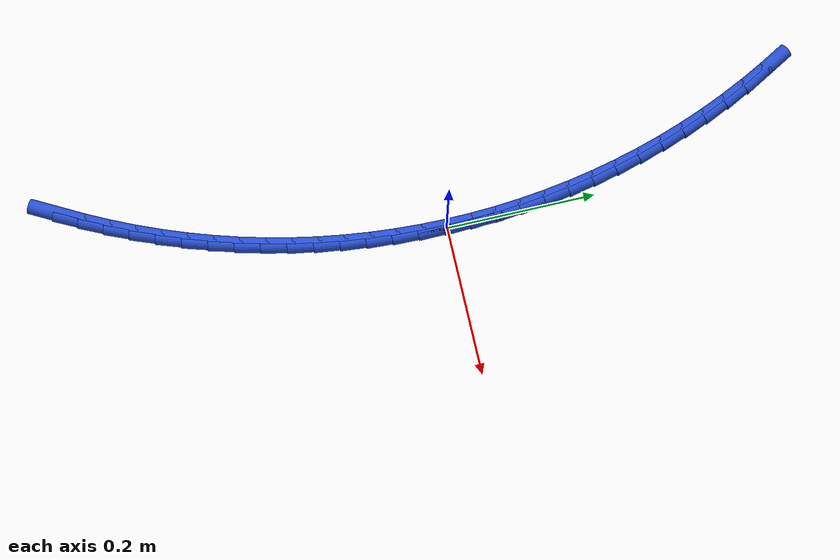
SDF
<sdf version="1.6">
 <world name="default">
  <model name="ground_plane">
   <static>1</static>
   <link name="link">
    <collision name="collision">
     <geometry><plane><normal>0 0 1</normal><size>100 100</size></plane></geometry>
     <surface><friction><ode><mu>100</mu><mu2>50</mu2></ode></friction></surface>
    </collision>
    <visual name="visual">
     <cast_shadows>0</cast_shadows>
     <geometry><plane><normal>0 0 1</normal><size>100 100</size></plane></geometry>
     <material>
      <script><uri>file://media/materials/scripts/gazebo.material</uri><name>Gazebo/WhiteGlow</name></script>
     </material>
    </visual>
   </link>
  </model>
  <model name="line">
   <link name="link_0">
    <pose>1.734723475976807e-18 9.71445146547012e-17 0.01 0 1.57 -1.5542168274850594</pose>
    <collision name="collision">
     <geometry><cylinder><radius>0.01</radius><length>0.08</length></cylinder></geometry>
    </collision>
    <visual name="visual">
     <material>
      <script><name>Gazebo/Blue</name><uri>file://media/materials/scripts/gazebo.material</uri></script>
     </material>
     <geometry><cylinder><radius>0.01</radius><length>0.08</length></cylinder></geometry>
    </visual>
   </link>
   <link name="link_1">
    <pose>-0.0005699413144302086 0.03437311833359964 0.01 0 1.57 -1.5199864834201993</pose>
    <collision name="collision">
     <geometry><cylinder><radius>0.01</radius><length>0.08</length></cylinder></geometry>
    </collision>
    <visual name="visual">
     <material>
      <script><name>Gazebo/Blue</name><uri>file://media/materials/scripts/gazebo.material</uri></script>
     </material>
     <geometry><cylinder><radius>0.01</radius><length>0.08</length></cylinder></geometry>
    </visual>
   </link>
   <link name="link_2">
    <pose>-0.0023165897945779503 0.0687197140490652 0.01 0 1.57 -1.485694874704262</pose>
    <collision name="collision">
     <geometry><cylinder><radius>0.01</radius><length>0.08</length></cylinder></geometry>
    </collision>
    <visual name="visual">
     <material>
      <script><name>Gazebo/Blue</name><uri>file://media/materials/scripts/gazebo.material</uri></script>
     </material>
     <geometry><cylinder><radius>0.01</radius><length>0.08</length></cylinder></geometry>
    </visual>
   </link>
   <link name="link_3">
    <pose>-0.005240828427916939 0.10299851644580163 0.01 0 1.57 -1.4512998003957758</pose>
    <collision name="collision">
     <geometry><cylinder><radius>0.01</radius><length>0.08</length></cylinder></geometry>
    </collision>
    <visual name="visual">
     <material>
      <script><name>Gazebo/Blue</name><uri>file://media/materials/scripts/gazebo.material</uri></script>
     </material>
     <geometry><cylinder><radius>0.01</radius><length>0.08</length></cylinder></geometry>
    </visual>
   </link>
   <link name="link_4">
    <pose>-0.009343540201920894 0.13716825482321376 0.01 0 1.57 -1.4167599571326206</pose>
    <collision name="collision">
     <geometry><cylinder><radius>0.01</radius><length>0.08</length></cylinder></geometry>
    </collision>
    <visual name="visual">
     <material>
      <script><name>Gazebo/Blue</name><uri>file://media/materials/scripts/gazebo.material</uri></script>
     </material>
     <geometry><cylinder><radius>0.01</radius><length>0.08</length></cylinder></geometry>
    </visual>
   </link>
   <link name="link_5">
    <pose>-0.01462560810406353 0.17118765848070652 0.01 0 1.57 -1.3820352444931414</pose>
    <collision name="collision">
     <geometry><cylinder><radius>0.01</radius><length>0.08</length></cylinder></geometry>
    </collision>
    <visual name="visual">
     <material>
      <script><name>Gazebo/Blue</name><uri>file://media/materials/scripts/gazebo.material</uri></script>
     </material>
     <geometry><cylinder><radius>0.01</radius><length>0.08</length></cylinder></geometry>
    </visual>
   </link>
   <link name="link_6">
    <pose>-0.021087915121818568 0.20501545671768473 0.01 0 1.57 -1.3470870885615318</pose>
    <collision name="collision">
     <geometry><cylinder><radius>0.01</radius><length>0.08</length></cylinder></geometry>
    </collision>
    <visual name="visual">
     <material>
      <script><name>Gazebo/Blue</name><uri>file://media/materials/scripts/gazebo.material</uri></script>
     </material>
     <geometry><cylinder><radius>0.01</radius><length>0.08</length></cylinder></geometry>
    </visual>
   </link>
   <link name="link_7">
    <pose>-0.028731344242659704 0.23861037883355316 0.01 0 1.57 -1.3118787876589248</pose>
    <collision name="collision">
     <geometry><cylinder><radius>0.01</radius><length>0.08</length></cylinder></geometry>
    </collision>
    <visual name="visual">
     <material>
      <script><name>Gazebo/Blue</name><uri>file://media/materials/scripts/gazebo.material</uri></script>
     </material>
     <geometry><cylinder><radius>0.01</radius><length>0.08</length></cylinder></geometry>
    </visual>
   </link>
   <link name="link_8">
    <pose>-0.03755677845406068 0.27193115412771673 0.01 0 1.57 -1.2763758832175205</pose>
    <collision name="collision">
     <geometry><cylinder><radius>0.01</radius><length>0.08</length></cylinder></geometry>
    </collision>
    <visual name="visual">
     <material>
      <script><name>Gazebo/Blue</name><uri>file://media/materials/scripts/gazebo.material</uri></script>
     </material>
     <geometry><cylinder><radius>0.01</radius><length>0.08</length></cylinder></geometry>
    </visual>
   </link>
   <link name="link_9">
    <pose>-0.0475651007434952 0.3049365118995803 0.01 0 1.57 -1.240554124326306</pose>
    <collision name="collision">
     <geometry><cylinder><radius>0.01</radius><length>0.08</length></cylinder></geometry>
    </collision>
    <visual name="visual">
     <material>
      <script><name>Gazebo/Blue</name><uri>file://media/materials/scripts/gazebo.material</uri></script>
     </material>
     <geometry><cylinder><radius>0.01</radius><length>0.08</length></cylinder></geometry>
    </visual>
   </link>
   <link name="link_10">
    <pose>-0.058756923608543905 0.3375851977467124 0.01 0 1.57 -1.2046821692691358</pose>
    <collision name="collision">
     <geometry><cylinder><radius>0.01</radius><length>0.08</length></cylinder></geometry>
    </collision>
    <visual name="visual">
     <material>
      <script><name>Gazebo/Blue</name><uri>file://media/materials/scripts/gazebo.material</uri></script>
     </material>
     <geometry><cylinder><radius>0.01</radius><length>0.08</length></cylinder></geometry>
    </visual>
   </link>
   <link name="link_11">
    <pose>-0.07112209562300975 0.36983660583876315 0.01 0 1.57 -1.169108550293276</pose>
    <collision name="collision">
     <geometry><cylinder><radius>0.01</radius><length>0.08</length></cylinder></geometry>
    </collision>
    <visual name="visual">
     <material>
      <script><name>Gazebo/Blue</name><uri>file://media/materials/scripts/gazebo.material</uri></script>
     </material>
     <geometry><cylinder><radius>0.01</radius><length>0.08</length></cylinder></geometry>
    </visual>
   </link>
   <link name="link_12">
    <pose>-0.08463633708232285 0.40165098163410373 0.01 0 1.57 -1.1338066439252668</pose>
    <collision name="collision">
     <geometry><cylinder><radius>0.01</radius><length>0.08</length></cylinder></geometry>
    </collision>
    <visual name="visual">
     <material>
      <script><name>Gazebo/Blue</name><uri>file://media/materials/scripts/gazebo.material</uri></script>
     </material>
     <geometry><cylinder><radius>0.01</radius><length>0.08</length></cylinder></geometry>
    </visual>
   </link>
   <link name="link_13">
    <pose>-0.09927440927955722 0.43298862837506635 0.01 0 1.57 -1.098721480478272</pose>
    <collision name="collision">
     <geometry><cylinder><radius>0.01</radius><length>0.08</length></cylinder></geometry>
    </collision>
    <visual name="visual">
     <material>
      <script><name>Gazebo/Blue</name><uri>file://media/materials/scripts/gazebo.material</uri></script>
     </material>
     <geometry><cylinder><radius>0.01</radius><length>0.08</length></cylinder></geometry>
    </visual>
   </link>
   <link name="link_14">
    <pose>-0.1150110735077868 0.46380984930398367 0.01 0 1.57 -1.0637969533205747</pose>
    <collision name="collision">
     <geometry><cylinder><radius>0.01</radius><length>0.08</length></cylinder></geometry>
    </collision>
    <visual name="visual">
     <material>
      <script><name>Gazebo/Blue</name><uri>file://media/materials/scripts/gazebo.material</uri></script>
     </material>
     <geometry><cylinder><radius>0.01</radius><length>0.08</length></cylinder></geometry>
    </visual>
   </link>
   <link name="link_175">
    <pose>-0.1308974570580643 -0.4949351887020647 0.01 0 1.57 1.0719178830069171</pose>
    <collision name="collision">
     <geometry><cylinder><radius>0.01</radius><length>0.08</length></cylinder></geometry>
    </collision>
    <visual name="visual">
     <material>
      <script><name>Gazebo/Blue</name><uri>file://media/materials/scripts/gazebo.material</uri></script>
     </material>
     <geometry><cylinder><radius>0.01</radius><length>0.08</length></cylinder></geometry>
    </visual>
   </link>
   <link name="link_176">
    <pose>-0.11436398050485405 -0.46459002114347314 0.01 0 1.57 1.1063314329329645</pose>
    <collision name="collision">
     <geometry><cylinder><radius>0.01</radius><length>0.08</length></cylinder></geometry>
    </collision>
    <visual name="visual">
     <material>
      <script><name>Gazebo/Blue</name><uri>file://media/materials/scripts/gazebo.material</uri></script>
     </material>
     <geometry><cylinder><radius>0.01</radius><length>0.08</length></cylinder></geometry>
    </visual>
   </link>
   <link name="link_177">
    <pose>-0.09884714264692106 -0.4336196503487639 0.01 0 1.57 1.1405766983844552</pose>
    <collision name="collision">
     <geometry><cylinder><radius>0.01</radius><length>0.08</length></cylinder></geometry>
    </collision>
    <visual name="visual">
     <material>
      <script><name>Gazebo/Blue</name><uri>file://media/materials/scripts/gazebo.material</uri></script>
     </material>
     <geometry><cylinder><radius>0.01</radius><length>0.08</length></cylinder></geometry>
    </visual>
   </link>
   <link name="link_178">
    <pose>-0.0843799337779443 -0.40209290662629493 0.01 0 1.57 1.1748000423163563</pose>
    <collision name="collision">
     <geometry><cylinder><radius>0.01</radius><length>0.08</length></cylinder></geometry>
    </collision>
    <visual name="visual">
     <material>
      <script><name>Gazebo/Blue</name><uri>file://media/materials/scripts/gazebo.material</uri></script>
     </material>
     <geometry><cylinder><radius>0.01</radius><length>0.08</length></cylinder></geometry>
    </visual>
   </link>
   <link name="link_179">
    <pose>-0.07099534419160292 -0.3700786202844242 0.01 0 1.57 1.209147069117894</pose>
    <collision name="collision">
     <geometry><cylinder><radius>0.01</radius><length>0.08</length></cylinder></geometry>
    </collision>
    <visual name="visual">
     <material>
      <script><name>Gazebo/Blue</name><uri>file://media/materials/scripts/gazebo.material</uri></script>
     </material>
     <geometry><cylinder><radius>0.01</radius><length>0.08</length></cylinder></geometry>
    </visual>
   </link>
   <link name="link_180">
    <pose>-0.05872636418157529 -0.337645621631508 0.01 0 1.57 1.2437442926390148</pose>
    <collision name="collision">
     <geometry><cylinder><radius>0.01</radius><length>0.08</length></cylinder></geometry>
    </collision>
    <visual name="visual">
     <material>
      <script><name>Gazebo/Blue</name><uri>file://media/materials/scripts/gazebo.material</uri></script>
     </material>
     <geometry><cylinder><radius>0.01</radius><length>0.08</length></cylinder></geometry>
    </visual>
   </link>
   <link name="link_181">
    <pose>-0.0476048269948178 -0.3048613909194932 0.01 0 1.57 1.2784263001976446</pose>
    <collision name="collision">
     <geometry><cylinder><radius>0.01</radius><length>0.08</length></cylinder></geometry>
    </collision>
    <visual name="visual">
     <material>
      <script><name>Gazebo/Blue</name><uri>file://media/materials/scripts/gazebo.material</uri></script>
     </material>
     <geometry><cylinder><radius>0.01</radius><length>0.08</length></cylinder></geometry>
    </visual>
   </link>
   <link name="link_182">
    <pose>-0.03764551995750612 -0.2717735190093582 0.01 0 1.57 1.313008058495408</pose>
    <collision name="collision">
     <geometry><cylinder><radius>0.01</radius><length>0.08</length></cylinder></geometry>
    </collision>
    <visual name="visual">
     <material>
      <script><name>Gazebo/Blue</name><uri>file://media/materials/scripts/gazebo.material</uri></script>
     </material>
     <geometry><cylinder><radius>0.01</radius><length>0.08</length></cylinder></geometry>
    </visual>
   </link>
   <link name="link_183">
    <pose>-0.028850243605270012 -0.23841444361442166 0.01 0 1.57 1.3474948645885132</pose>
    <collision name="collision">
     <geometry><cylinder><radius>0.01</radius><length>0.08</length></cylinder></geometry>
    </collision>
    <visual name="visual">
     <material>
      <script><name>Gazebo/Blue</name><uri>file://media/materials/scripts/gazebo.material</uri></script>
     </material>
     <geometry><cylinder><radius>0.01</radius><length>0.08</length></cylinder></geometry>
    </visual>
   </link>
   <link name="link_184">
    <pose>-0.021220472124755512 -0.20481622165997634 0.01 0 1.57 1.3818987958831694</pose>
    <collision name="collision">
     <geometry><cylinder><radius>0.01</radius><length>0.08</length></cylinder></geometry>
    </collision>
    <visual name="visual">
     <material>
      <script><name>Gazebo/Blue</name><uri>file://media/materials/scripts/gazebo.material</uri></script>
     </material>
     <geometry><cylinder><radius>0.01</radius><length>0.08</length></cylinder></geometry>
    </visual>
   </link>
   <link name="link_185">
    <pose>-0.014757679702608648 -0.17101091007131464 0.01 0 1.57 1.416233100109331</pose>
    <collision name="collision">
     <geometry><cylinder><radius>0.01</radius><length>0.08</length></cylinder></geometry>
    </collision>
    <visual name="visual">
     <material>
      <script><name>Gazebo/Blue</name><uri>file://media/materials/scripts/gazebo.material</uri></script>
     </material>
     <geometry><cylinder><radius>0.01</radius><length>0.08</length></cylinder></geometry>
    </visual>
   </link>
   <link name="link_186">
    <pose>-0.009463340525475553 -0.1370305657737298 0.01 0 1.57 1.4505119754173914</pose>
    <collision name="collision">
     <geometry><cylinder><radius>0.01</radius><length>0.08</length></cylinder></geometry>
    </collision>
    <visual name="visual">
     <material>
      <script><name>Gazebo/Blue</name><uri>file://media/materials/scripts/gazebo.material</uri></script>
     </material>
     <geometry><cylinder><radius>0.01</radius><length>0.08</length></cylinder></geometry>
    </visual>
   </link>
   <link name="link_187">
    <pose>-0.0053389287800020375 -0.10290724569251299 0.01 0 1.57 1.4847503483304927</pose>
    <collision name="collision">
     <geometry><cylinder><radius>0.01</radius><length>0.08</length></cylinder></geometry>
    </collision>
    <visual name="visual">
     <material>
      <script><name>Gazebo/Blue</name><uri>file://media/materials/scripts/gazebo.material</uri></script>
     </material>
     <geometry><cylinder><radius>0.01</radius><length>0.08</length></cylinder></geometry>
    </visual>
   </link>
   <link name="link_188">
    <pose>-0.002385918652834252 -0.06867300675295739 0.01 0 1.57 1.51896365046628</pose>
    <collision name="collision">
     <geometry><cylinder><radius>0.01</radius><length>0.08</length></cylinder></geometry>
    </collision>
    <visual name="visual">
     <material>
      <script><name>Gazebo/Blue</name><uri>file://media/materials/scripts/gazebo.material</uri></script>
     </material>
     <geometry><cylinder><radius>0.01</radius><length>0.08</length></cylinder></geometry>
    </visual>
   </link>
   <link name="link_189">
    <pose>-0.0006057843306182262 -0.034359905880355535 0.01 0 1.57 1.5531675946969359</pose>
    <collision name="collision">
     <geometry><cylinder><radius>0.01</radius><length>0.08</length></cylinder></geometry>
    </collision>
    <visual name="visual">
     <material>
      <script><name>Gazebo/Blue</name><uri>file://media/materials/scripts/gazebo.material</uri></script>
     </material>
     <geometry><cylinder><radius>0.01</radius><length>0.08</length></cylinder></geometry>
    </visual>
   </link>
   <link name="link_190">
    <pose>1.734723475976807e-18 -6.938893903907228e-18 0.01 0 1.57 -1.5542147023491264</pose>
    <collision name="collision">
     <geometry><cylinder><radius>0.01</radius><length>0.08</length></cylinder></geometry>
    </collision>
    <visual name="visual">
     <material>
      <script><name>Gazebo/Blue</name><uri>file://media/materials/scripts/gazebo.material</uri></script>
     </material>
     <geometry><cylinder><radius>0.01</radius><length>0.08</length></cylinder></geometry>
    </visual>
   </link>
   <link name="link_191">
    <pose>-0.0005700398476255926 0.03437465396281674 0.01 0 1.57 -1.5542147023491264</pose>
    <collision name="collision">
     <geometry><cylinder><radius>0.01</radius><length>0.08</length></cylinder></geometry>
    </collision>
    <visual name="visual">
     <material>
      <script><name>Gazebo/Blue</name><uri>file://media/materials/scripts/gazebo.material</uri></script>
     </material>
     <geometry><cylinder><radius>0.01</radius><length>0.08</length></cylinder></geometry>
    </visual>
   </link>
  </model>
 </world>
</sdf>
